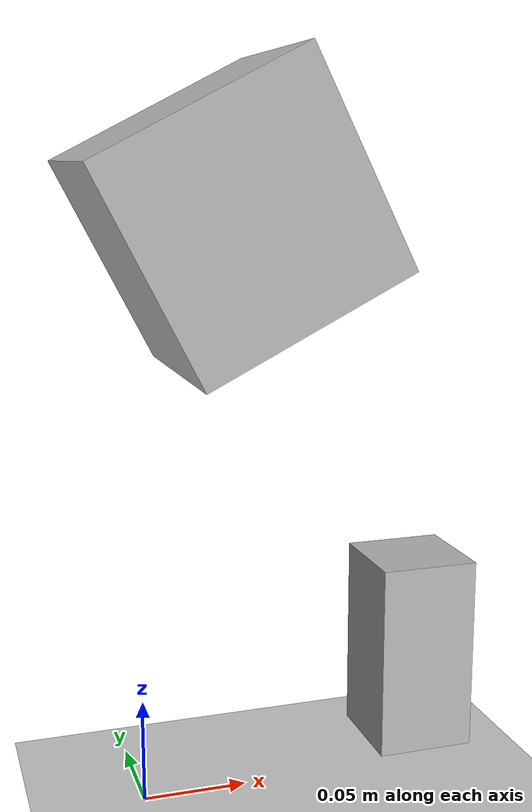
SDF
<sdf version="1.6">
 <world name="default">
  <light name="sun" type="directional">
   <pose>0 0 10 0 -0 0</pose>
   <diffuse>0.8 0.8 0.8 1</diffuse>
   <specular>0.1 0.1 0.1 1</specular>
   <attenuation>
    <range>1000</range>
    <constant>0.9</constant>
    <linear>0.01</linear>
    <quadratic>0.001</quadratic>
   </attenuation>
   <direction>-0.5 0.5 -1</direction>
  </light>
  <model name="ground_plane">
   <static>1</static>
   <link name="link">
    <collision name="collision">
     <geometry><plane><normal>0 0 1</normal><size>100 100</size></plane></geometry>
     <surface><friction><ode><mu>100</mu><mu2>50</mu2></ode></friction></surface>
    </collision>
    <visual name="visual">
     <cast_shadows>0</cast_shadows>
     <geometry><plane><normal>0 0 1</normal><size>100 100</size></plane></geometry>
     <material>
      <script><uri>file://media/materials/scripts/gazebo.material</uri><name>Gazebo/Grey</name></script>
     </material>
    </visual>
   </link>
  </model>
  <gravity>0 0 -9.8</gravity>
  <magnetic_field>6e-06 2.3e-05 -4.2e-05</magnetic_field>
  <atmosphere type="adiabatic"/>
  <physics name="default_physics" default="0" type="ode">
   <max_step_size>0.001</max_step_size>
   <real_time_factor>1</real_time_factor>
   <real_time_update_rate>1000</real_time_update_rate>
  </physics>
  <scene><ambient>0.4 0.4 0.4 1</ambient><background>0.7 0.7 0.7 1</background><shadows>1</shadows></scene>
  <spherical_coordinates>
   <surface_model>EARTH_WGS84</surface_model>
   <latitude_deg>0</latitude_deg>
   <longitude_deg>0</longitude_deg>
   <elevation>0</elevation>
   <heading_deg>0</heading_deg>
  </spherical_coordinates>
  <model name="camera">
   <static>1</static>
   <link name="link">
    <gravity>0</gravity>
    <pose>0.05 0.05 0.05 0 -0 0</pose>
    <inertial><mass>0.1</mass></inertial>
    <visual name="visual"><geometry><box><size>0.1 0.1 0.1</size></box></geometry></visual>
    <sensor name="camera1" type="camera">
     <camera name="__default__">
      <horizontal_fov>1.047</horizontal_fov>
      <image><width>320</width><height>240</height></image>
      <clip><near>0.1</near><far>100</far></clip>
     </camera>
     <always_on>1</always_on>
     <update_rate>30</update_rate>
     <visualize>1</visualize>
     <plugin name="camera_controller" filename="libgazebo_ros_camera.so">
      <alwaysOn>true</alwaysOn>
      <updateRate>0.0</updateRate>
      <cameraName>camera1</cameraName>
      <imageTopicName>image_raw</imageTopicName>
      <cameraInfoTopicName>camera_info</cameraInfoTopicName>
      <frameName>camera_link_optical</frameName>
      <hackBaseline>0.0</hackBaseline>
      <distortionK1>0.0</distortionK1>
      <distortionK2>0.0</distortionK2>
      <distortionK3>0.0</distortionK3>
      <distortionT1>0.0</distortionT1>
      <distortionT2>0.0</distortionT2>
      <CxPrime>0</CxPrime>
      <Cx>0.0</Cx>
      <Cy>0.0</Cy>
      <focalLength>0.0</focalLength>
     </plugin>
    </sensor>
   </link>
   <pose>-0.030588 -0.07266 0.3 0 1.1 0</pose>
  </model>
  <model name="aruco_cube">
   <static>0</static>
   <link name="link">
    <inertial>
     <mass>0.05</mass>
     <inertia>
      <ixx>5.2083e-05</ixx>
      <ixy>0</ixy>
      <ixz>0</ixz>
      <iyy>5.2083e-05</iyy>
      <iyz>0</iyz>
      <izz>2.0833e-05</izz>
     </inertia>
    </inertial>
    <collision name="colision">
     <geometry><box><size>0.05 0.05 0.1</size></box></geometry>
     <surface>
      <friction><ode><mu>30</mu><mu2>30</mu2><fdir1>0 0 0</fdir1></ode></friction>
      <contact><ode><kp>1e+06</kp><kd>100</kd><min_depth>0.0025</min_depth><max_vel>1</max_vel></ode></contact>
     </surface>
    </collision>
    <visual name="visual1">
     <geometry><mesh><uri>model://aruco_cube/meshes/aruco_cube_5cm.dae</uri><scale>1 1 2</scale></mesh></geometry>
    </visual>
    <velocity_decay><linear>0</linear><angular>0</angular></velocity_decay>
   </link>
   <pose>0.149985 0.029987 0.049868 -7.3e-05 7.3e-05 0</pose>
  </model>
 </world>
</sdf>
